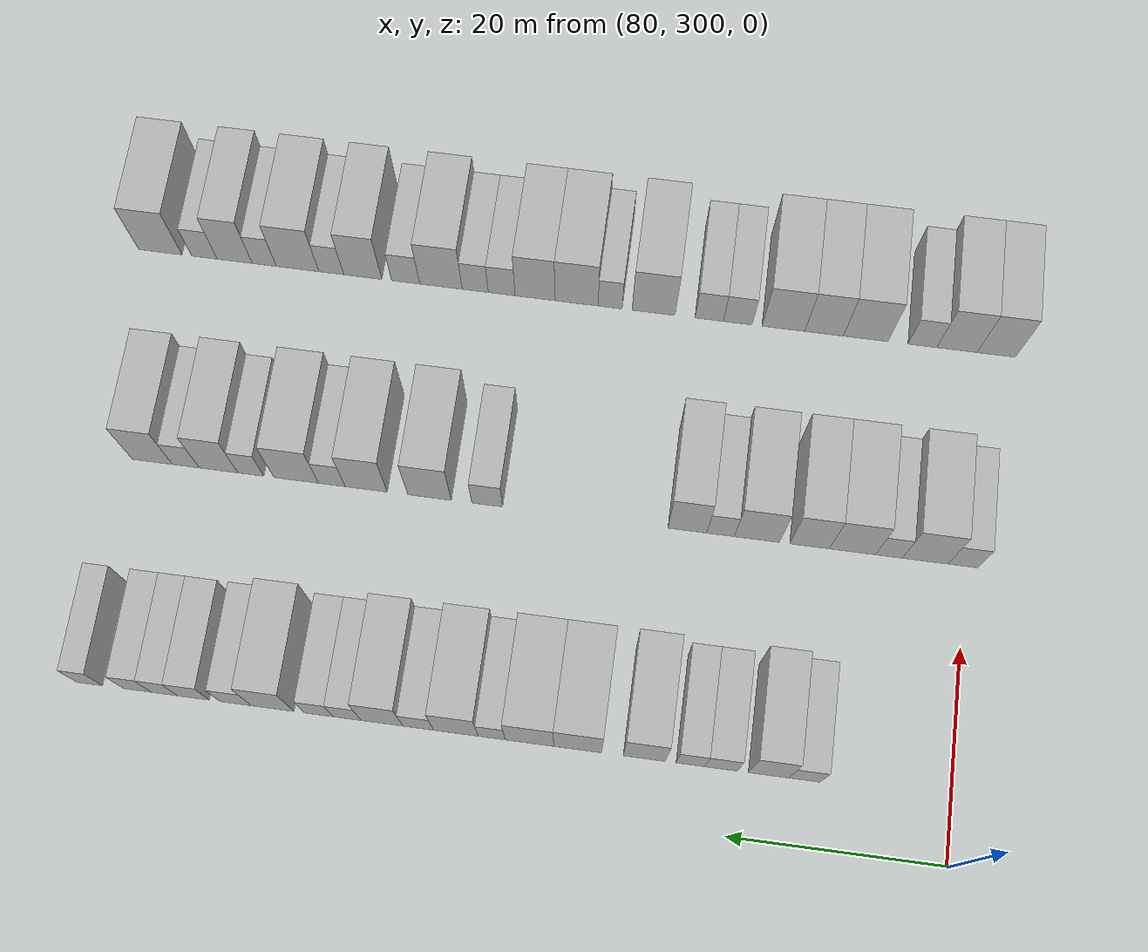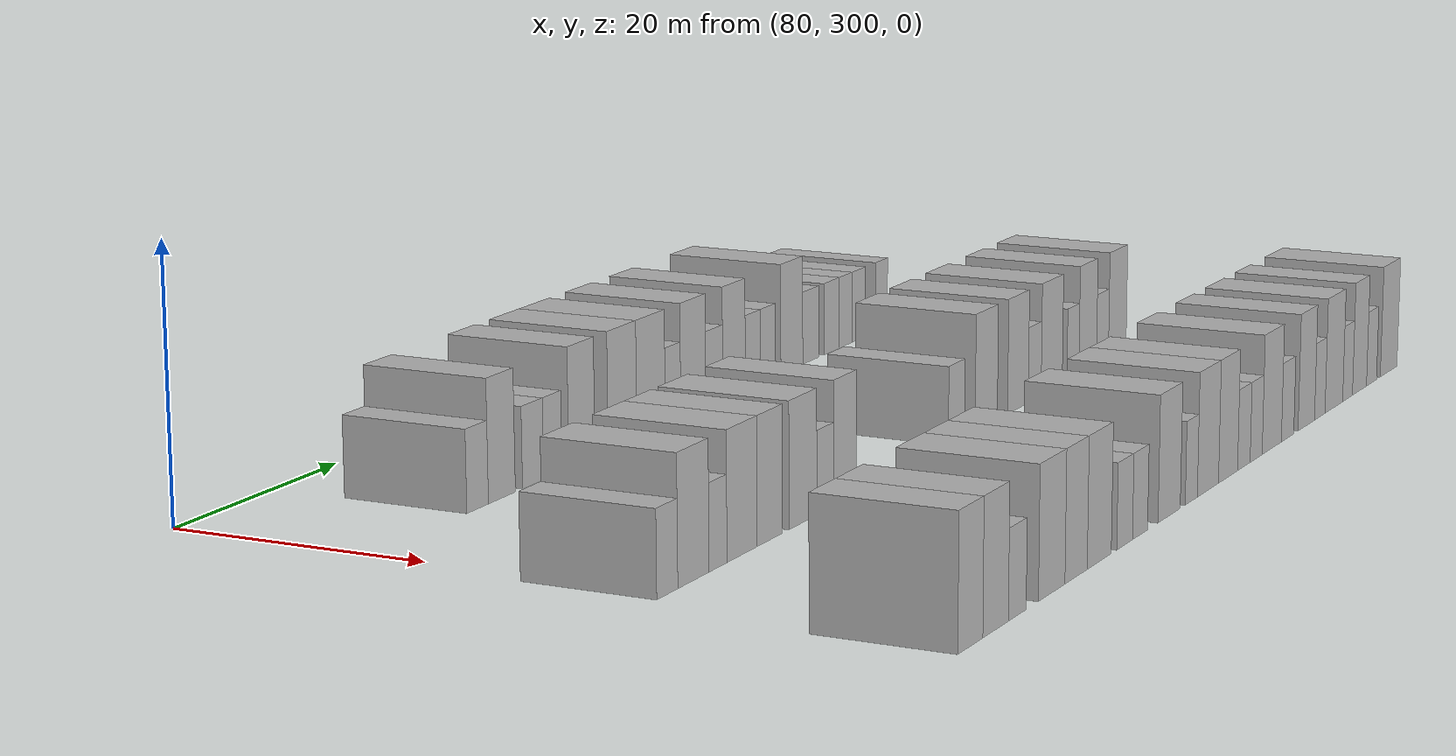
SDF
<sdf version="1.6">
 <world name="default">
  <model name="building_718">
   <static>1</static>
   <pose>91.0000 313.3676 0 0.000000 0.000000 0.000000</pose>
   <link name="link">
    <pose>0 0 3.00 0 0 0</pose>
    <collision name="collision"><geometry><box><size>10.0000 2.8907 6.0000</size></box></geometry></collision>
    <visual name="visual">
     <cast_shadows>0</cast_shadows>
     <geometry><box><size>10.0000 2.8907 6.0000</size></box></geometry>
     <material>
      <script>
       <uri>model://HANNAS_wall/materials/scripts</uri>
       <uri>model://HANNAS_wall/materials/textures</uri>
       <name>vrc/HANNAS_wall</name>
      </script>
     </material>
    </visual>
   </link>
  </model>
  <model name="building_719">
   <static>1</static>
   <pose>91.0000 316.6558 0 0.000000 0.000000 0.000000</pose>
   <link name="link">
    <pose>0 0 4.50 0 0 0</pose>
    <collision name="collision"><geometry><box><size>10.0000 3.6857 9.0000</size></box></geometry></collision>
    <visual name="visual">
     <cast_shadows>0</cast_shadows>
     <geometry><box><size>10.0000 3.6857 9.0000</size></box></geometry>
     <material>
      <script>
       <uri>model://HANNAS_wall/materials/scripts</uri>
       <uri>model://HANNAS_wall/materials/textures</uri>
       <name>vrc/HANNAS_wall</name>
      </script>
     </material>
    </visual>
   </link>
  </model>
  <model name="building_720">
   <static>1</static>
   <pose>91.0000 320.9948 0 0.000000 0.000000 0.000000</pose>
   <link name="link">
    <pose>0 0 3.00 0 0 0</pose>
    <collision name="collision"><geometry><box><size>10.0000 2.9923 6.0000</size></box></geometry></collision>
    <visual name="visual">
     <cast_shadows>0</cast_shadows>
     <geometry><box><size>10.0000 2.9923 6.0000</size></box></geometry>
     <material>
      <script>
       <uri>model://HANNAS_wall/materials/scripts</uri>
       <uri>model://HANNAS_wall/materials/textures</uri>
       <name>vrc/HANNAS_wall</name>
      </script>
     </material>
    </visual>
   </link>
  </model>
  <model name="building_721">
   <static>1</static>
   <pose>91.0000 323.8065 0 0.000000 0.000000 0.000000</pose>
   <link name="link">
    <pose>0 0 3.00 0 0 0</pose>
    <collision name="collision"><geometry><box><size>10.0000 2.6312 6.0000</size></box></geometry></collision>
    <visual name="visual">
     <cast_shadows>0</cast_shadows>
     <geometry><box><size>10.0000 2.6312 6.0000</size></box></geometry>
     <material>
      <script>
       <uri>model://HANNAS_wall/materials/scripts</uri>
       <uri>model://HANNAS_wall/materials/textures</uri>
       <name>vrc/HANNAS_wall</name>
      </script>
     </material>
    </visual>
   </link>
  </model>
  <model name="building_722">
   <static>1</static>
   <pose>91.0000 328.0548 0 0.000000 0.000000 0.000000</pose>
   <link name="link">
    <pose>0 0 4.50 0 0 0</pose>
    <collision name="collision"><geometry><box><size>10.0000 3.8654 9.0000</size></box></geometry></collision>
    <visual name="visual">
     <cast_shadows>0</cast_shadows>
     <geometry><box><size>10.0000 3.8654 9.0000</size></box></geometry>
     <material>
      <script>
       <uri>model://HANNAS_wall/materials/scripts</uri>
       <uri>model://HANNAS_wall/materials/textures</uri>
       <name>vrc/HANNAS_wall</name>
      </script>
     </material>
    </visual>
   </link>
  </model>
  <model name="building_723">
   <static>1</static>
   <pose>91.0000 334.1912 0 0.000000 0.000000 0.000000</pose>
   <link name="link">
    <pose>0 0 4.50 0 0 0</pose>
    <collision name="collision"><geometry><box><size>10.0000 4.4074 9.0000</size></box></geometry></collision>
    <visual name="visual">
     <cast_shadows>0</cast_shadows>
     <geometry><box><size>10.0000 4.4074 9.0000</size></box></geometry>
     <material>
      <script>
       <uri>model://HANNAS_wall/materials/scripts</uri>
       <uri>model://HANNAS_wall/materials/textures</uri>
       <name>vrc/HANNAS_wall</name>
      </script>
     </material>
    </visual>
   </link>
  </model>
  <model name="building_724">
   <static>1</static>
   <pose>91.0000 338.6426 0 0.000000 0.000000 0.000000</pose>
   <link name="link">
    <pose>0 0 4.50 0 0 0</pose>
    <collision name="collision"><geometry><box><size>10.0000 4.4955 9.0000</size></box></geometry></collision>
    <visual name="visual">
     <cast_shadows>0</cast_shadows>
     <geometry><box><size>10.0000 4.4955 9.0000</size></box></geometry>
     <material>
      <script>
       <uri>model://HANNAS_wall/materials/scripts</uri>
       <uri>model://HANNAS_wall/materials/textures</uri>
       <name>vrc/HANNAS_wall</name>
      </script>
     </material>
    </visual>
   </link>
  </model>
  <model name="building_725">
   <static>1</static>
   <pose>91.0000 342.1413 0 0.000000 0.000000 0.000000</pose>
   <link name="link">
    <pose>0 0 3.00 0 0 0</pose>
    <collision name="collision"><geometry><box><size>10.0000 2.5018 6.0000</size></box></geometry></collision>
    <visual name="visual">
     <cast_shadows>0</cast_shadows>
     <geometry><box><size>10.0000 2.5018 6.0000</size></box></geometry>
     <material>
      <script>
       <uri>model://HANNAS_wall/materials/scripts</uri>
       <uri>model://HANNAS_wall/materials/textures</uri>
       <name>vrc/HANNAS_wall</name>
      </script>
     </material>
    </visual>
   </link>
  </model>
  <model name="building_726">
   <static>1</static>
   <pose>91.0000 345.4576 0 0.000000 0.000000 0.000000</pose>
   <link name="link">
    <pose>0 0 4.50 0 0 0</pose>
    <collision name="collision"><geometry><box><size>10.0000 4.1308 9.0000</size></box></geometry></collision>
    <visual name="visual">
     <cast_shadows>0</cast_shadows>
     <geometry><box><size>10.0000 4.1308 9.0000</size></box></geometry>
     <material>
      <script>
       <uri>model://HANNAS_wall/materials/scripts</uri>
       <uri>model://HANNAS_wall/materials/textures</uri>
       <name>vrc/HANNAS_wall</name>
      </script>
     </material>
    </visual>
   </link>
  </model>
  <model name="building_727">
   <static>1</static>
   <pose>91.0000 348.9565 0 0.000000 0.000000 0.000000</pose>
   <link name="link">
    <pose>0 0 3.00 0 0 0</pose>
    <collision name="collision"><geometry><box><size>10.0000 2.8669 6.0000</size></box></geometry></collision>
    <visual name="visual">
     <cast_shadows>0</cast_shadows>
     <geometry><box><size>10.0000 2.8669 6.0000</size></box></geometry>
     <material>
      <script>
       <uri>model://HANNAS_wall/materials/scripts</uri>
       <uri>model://HANNAS_wall/materials/textures</uri>
       <name>vrc/HANNAS_wall</name>
      </script>
     </material>
    </visual>
   </link>
  </model>
  <model name="building_728">
   <static>1</static>
   <pose>91.0000 352.3343 0 0.000000 0.000000 0.000000</pose>
   <link name="link">
    <pose>0 0 4.50 0 0 0</pose>
    <collision name="collision"><geometry><box><size>10.0000 3.8886 9.0000</size></box></geometry></collision>
    <visual name="visual">
     <cast_shadows>0</cast_shadows>
     <geometry><box><size>10.0000 3.8886 9.0000</size></box></geometry>
     <material>
      <script>
       <uri>model://HANNAS_wall/materials/scripts</uri>
       <uri>model://HANNAS_wall/materials/textures</uri>
       <name>vrc/HANNAS_wall</name>
      </script>
     </material>
    </visual>
   </link>
  </model>
  <model name="building_729">
   <static>1</static>
   <pose>91.0000 355.5942 0 0.000000 0.000000 0.000000</pose>
   <link name="link">
    <pose>0 0 3.00 0 0 0</pose>
    <collision name="collision"><geometry><box><size>10.0000 2.6311 6.0000</size></box></geometry></collision>
    <visual name="visual">
     <cast_shadows>0</cast_shadows>
     <geometry><box><size>10.0000 2.6311 6.0000</size></box></geometry>
     <material>
      <script>
       <uri>model://HANNAS_wall/materials/scripts</uri>
       <uri>model://HANNAS_wall/materials/textures</uri>
       <name>vrc/HANNAS_wall</name>
      </script>
     </material>
    </visual>
   </link>
  </model>
  <model name="building_730">
   <static>1</static>
   <pose>91.0000 358.2446 0 0.000000 0.000000 0.000000</pose>
   <link name="link">
    <pose>0 0 3.00 0 0 0</pose>
    <collision name="collision"><geometry><box><size>10.0000 2.6698 6.0000</size></box></geometry></collision>
    <visual name="visual">
     <cast_shadows>0</cast_shadows>
     <geometry><box><size>10.0000 2.6698 6.0000</size></box></geometry>
     <material>
      <script>
       <uri>model://HANNAS_wall/materials/scripts</uri>
       <uri>model://HANNAS_wall/materials/textures</uri>
       <name>vrc/HANNAS_wall</name>
      </script>
     </material>
    </visual>
   </link>
  </model>
  <model name="building_731">
   <static>1</static>
   <pose>91.0000 362.5820 0 0.000000 0.000000 0.000000</pose>
   <link name="link">
    <pose>0 0 4.50 0 0 0</pose>
    <collision name="collision"><geometry><box><size>10.0000 4.0050 9.0000</size></box></geometry></collision>
    <visual name="visual">
     <cast_shadows>0</cast_shadows>
     <geometry><box><size>10.0000 4.0050 9.0000</size></box></geometry>
     <material>
      <script>
       <uri>model://HANNAS_wall/materials/scripts</uri>
       <uri>model://HANNAS_wall/materials/textures</uri>
       <name>vrc/HANNAS_wall</name>
      </script>
     </material>
    </visual>
   </link>
  </model>
  <model name="building_732">
   <static>1</static>
   <pose>91.0000 366.0600 0 0.000000 0.000000 0.000000</pose>
   <link name="link">
    <pose>0 0 3.00 0 0 0</pose>
    <collision name="collision"><geometry><box><size>10.0000 2.9511 6.0000</size></box></geometry></collision>
    <visual name="visual">
     <cast_shadows>0</cast_shadows>
     <geometry><box><size>10.0000 2.9511 6.0000</size></box></geometry>
     <material>
      <script>
       <uri>model://HANNAS_wall/materials/scripts</uri>
       <uri>model://HANNAS_wall/materials/textures</uri>
       <name>vrc/HANNAS_wall</name>
      </script>
     </material>
    </visual>
   </link>
  </model>
  <model name="building_733">
   <static>1</static>
   <pose>91.0000 370.0246 0 0.000000 0.000000 0.000000</pose>
   <link name="link">
    <pose>0 0 3.00 0 0 0</pose>
    <collision name="collision"><geometry><box><size>10.0000 2.9781 6.0000</size></box></geometry></collision>
    <visual name="visual">
     <cast_shadows>0</cast_shadows>
     <geometry><box><size>10.0000 2.9781 6.0000</size></box></geometry>
     <material>
      <script>
       <uri>model://HANNAS_wall/materials/scripts</uri>
       <uri>model://HANNAS_wall/materials/textures</uri>
       <name>vrc/HANNAS_wall</name>
      </script>
     </material>
    </visual>
   </link>
  </model>
  <model name="building_734">
   <static>1</static>
   <pose>91.0000 372.7498 0 0.000000 0.000000 0.000000</pose>
   <link name="link">
    <pose>0 0 3.00 0 0 0</pose>
    <collision name="collision"><geometry><box><size>10.0000 2.4721 6.0000</size></box></geometry></collision>
    <visual name="visual">
     <cast_shadows>0</cast_shadows>
     <geometry><box><size>10.0000 2.4721 6.0000</size></box></geometry>
     <material>
      <script>
       <uri>model://HANNAS_wall/materials/scripts</uri>
       <uri>model://HANNAS_wall/materials/textures</uri>
       <name>vrc/HANNAS_wall</name>
      </script>
     </material>
    </visual>
   </link>
  </model>
  <model name="building_735">
   <static>1</static>
   <pose>91.0000 375.2964 0 0.000000 0.000000 0.000000</pose>
   <link name="link">
    <pose>0 0 3.00 0 0 0</pose>
    <collision name="collision"><geometry><box><size>10.0000 2.6213 6.0000</size></box></geometry></collision>
    <visual name="visual">
     <cast_shadows>0</cast_shadows>
     <geometry><box><size>10.0000 2.6213 6.0000</size></box></geometry>
     <material>
      <script>
       <uri>model://HANNAS_wall/materials/scripts</uri>
       <uri>model://HANNAS_wall/materials/textures</uri>
       <name>vrc/HANNAS_wall</name>
      </script>
     </material>
    </visual>
   </link>
  </model>
  <model name="building_736">
   <static>1</static>
   <pose>91.0000 379.8107 0 0.000000 0.000000 0.000000</pose>
   <link name="link">
    <pose>0 0 3.00 0 0 0</pose>
    <collision name="collision"><geometry><box><size>10.0000 2.4073 6.0000</size></box></geometry></collision>
    <visual name="visual">
     <cast_shadows>0</cast_shadows>
     <geometry><box><size>10.0000 2.4073 6.0000</size></box></geometry>
     <material>
      <script>
       <uri>model://HANNAS_wall/materials/scripts</uri>
       <uri>model://HANNAS_wall/materials/textures</uri>
       <name>vrc/HANNAS_wall</name>
      </script>
     </material>
    </visual>
   </link>
  </model>
  <model name="building_913">
   <static>1</static>
   <pose>113.0000 300.2039 0 0.000000 0.000000 0.000000</pose>
   <link name="link">
    <pose>0 0 3.00 0 0 0</pose>
    <collision name="collision"><geometry><box><size>10.0000 2.8427 6.0000</size></box></geometry></collision>
    <visual name="visual">
     <cast_shadows>0</cast_shadows>
     <geometry><box><size>10.0000 2.8427 6.0000</size></box></geometry>
     <material>
      <script>
       <uri>model://HANNAS_wall/materials/scripts</uri>
       <uri>model://HANNAS_wall/materials/textures</uri>
       <name>vrc/HANNAS_wall</name>
      </script>
     </material>
    </visual>
   </link>
  </model>
  <model name="building_914">
   <static>1</static>
   <pose>113.0000 303.7923 0 0.000000 0.000000 0.000000</pose>
   <link name="link">
    <pose>0 0 4.50 0 0 0</pose>
    <collision name="collision"><geometry><box><size>10.0000 4.3341 9.0000</size></box></geometry></collision>
    <visual name="visual">
     <cast_shadows>0</cast_shadows>
     <geometry><box><size>10.0000 4.3341 9.0000</size></box></geometry>
     <material>
      <script>
       <uri>model://HANNAS_wall/materials/scripts</uri>
       <uri>model://HANNAS_wall/materials/textures</uri>
       <name>vrc/HANNAS_wall</name>
      </script>
     </material>
    </visual>
   </link>
  </model>
  <model name="building_915">
   <static>1</static>
   <pose>113.0000 307.2311 0 0.000000 0.000000 0.000000</pose>
   <link name="link">
    <pose>0 0 3.00 0 0 0</pose>
    <collision name="collision"><geometry><box><size>10.0000 2.5434 6.0000</size></box></geometry></collision>
    <visual name="visual">
     <cast_shadows>0</cast_shadows>
     <geometry><box><size>10.0000 2.5434 6.0000</size></box></geometry>
     <material>
      <script>
       <uri>model://HANNAS_wall/materials/scripts</uri>
       <uri>model://HANNAS_wall/materials/textures</uri>
       <name>vrc/HANNAS_wall</name>
      </script>
     </material>
    </visual>
   </link>
  </model>
  <model name="building_916">
   <static>1</static>
   <pose>113.0000 310.6995 0 0.000000 0.000000 0.000000</pose>
   <link name="link">
    <pose>0 0 4.50 0 0 0</pose>
    <collision name="collision"><geometry><box><size>10.0000 4.3933 9.0000</size></box></geometry></collision>
    <visual name="visual">
     <cast_shadows>0</cast_shadows>
     <geometry><box><size>10.0000 4.3933 9.0000</size></box></geometry>
     <material>
      <script>
       <uri>model://HANNAS_wall/materials/scripts</uri>
       <uri>model://HANNAS_wall/materials/textures</uri>
       <name>vrc/HANNAS_wall</name>
      </script>
     </material>
    </visual>
   </link>
  </model>
  <model name="building_917">
   <static>1</static>
   <pose>113.0000 314.7960 0 0.000000 0.000000 0.000000</pose>
   <link name="link">
    <pose>0 0 4.50 0 0 0</pose>
    <collision name="collision"><geometry><box><size>10.0000 3.7998 9.0000</size></box></geometry></collision>
    <visual name="visual">
     <cast_shadows>0</cast_shadows>
     <geometry><box><size>10.0000 3.7998 9.0000</size></box></geometry>
     <material>
      <script>
       <uri>model://HANNAS_wall/materials/scripts</uri>
       <uri>model://HANNAS_wall/materials/textures</uri>
       <name>vrc/HANNAS_wall</name>
      </script>
     </material>
    </visual>
   </link>
  </model>
  <model name="building_918">
   <static>1</static>
   <pose>113.0000 319.8504 0 0.000000 0.000000 0.000000</pose>
   <link name="link">
    <pose>0 0 4.50 0 0 0</pose>
    <collision name="collision"><geometry><box><size>10.0000 4.3091 9.0000</size></box></geometry></collision>
    <visual name="visual">
     <cast_shadows>0</cast_shadows>
     <geometry><box><size>10.0000 4.3091 9.0000</size></box></geometry>
     <material>
      <script>
       <uri>model://HANNAS_wall/materials/scripts</uri>
       <uri>model://HANNAS_wall/materials/textures</uri>
       <name>vrc/HANNAS_wall</name>
      </script>
     </material>
    </visual>
   </link>
  </model>
  <model name="building_919">
   <static>1</static>
   <pose>113.0000 323.3292 0 0.000000 0.000000 0.000000</pose>
   <link name="link">
    <pose>0 0 3.00 0 0 0</pose>
    <collision name="collision"><geometry><box><size>10.0000 2.6484 6.0000</size></box></geometry></collision>
    <visual name="visual">
     <cast_shadows>0</cast_shadows>
     <geometry><box><size>10.0000 2.6484 6.0000</size></box></geometry>
     <material>
      <script>
       <uri>model://HANNAS_wall/materials/scripts</uri>
       <uri>model://HANNAS_wall/materials/textures</uri>
       <name>vrc/HANNAS_wall</name>
      </script>
     </material>
    </visual>
   </link>
  </model>
  <model name="building_920">
   <static>1</static>
   <pose>113.0000 326.5164 0 0.000000 0.000000 0.000000</pose>
   <link name="link">
    <pose>0 0 4.50 0 0 0</pose>
    <collision name="collision"><geometry><box><size>10.0000 3.7261 9.0000</size></box></geometry></collision>
    <visual name="visual">
     <cast_shadows>0</cast_shadows>
     <geometry><box><size>10.0000 3.7261 9.0000</size></box></geometry>
     <material>
      <script>
       <uri>model://HANNAS_wall/materials/scripts</uri>
       <uri>model://HANNAS_wall/materials/textures</uri>
       <name>vrc/HANNAS_wall</name>
      </script>
     </material>
    </visual>
   </link>
  </model>
  <model name="building_921">
   <static>1</static>
   <pose>113.0000 345.8560 0 0.000000 0.000000 0.000000</pose>
   <link name="link">
    <pose>0 0 3.00 0 0 0</pose>
    <collision name="collision"><geometry><box><size>10.0000 2.9843 6.0000</size></box></geometry></collision>
    <visual name="visual">
     <cast_shadows>0</cast_shadows>
     <geometry><box><size>10.0000 2.9843 6.0000</size></box></geometry>
     <material>
      <script>
       <uri>model://HANNAS_wall/materials/scripts</uri>
       <uri>model://HANNAS_wall/materials/textures</uri>
       <name>vrc/HANNAS_wall</name>
      </script>
     </material>
    </visual>
   </link>
  </model>
  <model name="building_922">
   <static>1</static>
   <pose>113.0000 351.4665 0 0.000000 0.000000 0.000000</pose>
   <link name="link">
    <pose>0 0 4.50 0 0 0</pose>
    <collision name="collision"><geometry><box><size>10.0000 4.2368 9.0000</size></box></geometry></collision>
    <visual name="visual">
     <cast_shadows>0</cast_shadows>
     <geometry><box><size>10.0000 4.2368 9.0000</size></box></geometry>
     <material>
      <script>
       <uri>model://HANNAS_wall/materials/scripts</uri>
       <uri>model://HANNAS_wall/materials/textures</uri>
       <name>vrc/HANNAS_wall</name>
      </script>
     </material>
    </visual>
   </link>
  </model>
  <model name="building_923">
   <static>1</static>
   <pose>113.0000 357.6418 0 0.000000 0.000000 0.000000</pose>
   <link name="link">
    <pose>0 0 4.50 0 0 0</pose>
    <collision name="collision"><geometry><box><size>10.0000 4.1137 9.0000</size></box></geometry></collision>
    <visual name="visual">
     <cast_shadows>0</cast_shadows>
     <geometry><box><size>10.0000 4.1137 9.0000</size></box></geometry>
     <material>
      <script>
       <uri>model://HANNAS_wall/materials/scripts</uri>
       <uri>model://HANNAS_wall/materials/textures</uri>
       <name>vrc/HANNAS_wall</name>
      </script>
     </material>
    </visual>
   </link>
  </model>
  <model name="building_924">
   <static>1</static>
   <pose>113.0000 361.0004 0 0.000000 0.000000 0.000000</pose>
   <link name="link">
    <pose>0 0 3.00 0 0 0</pose>
    <collision name="collision"><geometry><box><size>10.0000 2.6034 6.0000</size></box></geometry></collision>
    <visual name="visual">
     <cast_shadows>0</cast_shadows>
     <geometry><box><size>10.0000 2.6034 6.0000</size></box></geometry>
     <material>
      <script>
       <uri>model://HANNAS_wall/materials/scripts</uri>
       <uri>model://HANNAS_wall/materials/textures</uri>
       <name>vrc/HANNAS_wall</name>
      </script>
     </material>
    </visual>
   </link>
  </model>
  <model name="building_925">
   <static>1</static>
   <pose>113.0000 364.4902 0 0.000000 0.000000 0.000000</pose>
   <link name="link">
    <pose>0 0 4.50 0 0 0</pose>
    <collision name="collision"><geometry><box><size>10.0000 4.3763 9.0000</size></box></geometry></collision>
    <visual name="visual">
     <cast_shadows>0</cast_shadows>
     <geometry><box><size>10.0000 4.3763 9.0000</size></box></geometry>
     <material>
      <script>
       <uri>model://HANNAS_wall/materials/scripts</uri>
       <uri>model://HANNAS_wall/materials/textures</uri>
       <name>vrc/HANNAS_wall</name>
      </script>
     </material>
    </visual>
   </link>
  </model>
  <model name="building_926">
   <static>1</static>
   <pose>113.0000 368.9442 0 0.000000 0.000000 0.000000</pose>
   <link name="link">
    <pose>0 0 3.00 0 0 0</pose>
    <collision name="collision"><geometry><box><size>10.0000 2.5316 6.0000</size></box></geometry></collision>
    <visual name="visual">
     <cast_shadows>0</cast_shadows>
     <geometry><box><size>10.0000 2.5316 6.0000</size></box></geometry>
     <material>
      <script>
       <uri>model://HANNAS_wall/materials/scripts</uri>
       <uri>model://HANNAS_wall/materials/textures</uri>
       <name>vrc/HANNAS_wall</name>
      </script>
     </material>
    </visual>
   </link>
  </model>
  <model name="building_927">
   <static>1</static>
   <pose>113.0000 372.1155 0 0.000000 0.000000 0.000000</pose>
   <link name="link">
    <pose>0 0 4.50 0 0 0</pose>
    <collision name="collision"><geometry><box><size>10.0000 3.8110 9.0000</size></box></geometry></collision>
    <visual name="visual">
     <cast_shadows>0</cast_shadows>
     <geometry><box><size>10.0000 3.8110 9.0000</size></box></geometry>
     <material>
      <script>
       <uri>model://HANNAS_wall/materials/scripts</uri>
       <uri>model://HANNAS_wall/materials/textures</uri>
       <name>vrc/HANNAS_wall</name>
      </script>
     </material>
    </visual>
   </link>
  </model>
  <model name="building_928">
   <static>1</static>
   <pose>113.0000 375.3457 0 0.000000 0.000000 0.000000</pose>
   <link name="link">
    <pose>0 0 3.00 0 0 0</pose>
    <collision name="collision"><geometry><box><size>10.0000 2.6495 6.0000</size></box></geometry></collision>
    <visual name="visual">
     <cast_shadows>0</cast_shadows>
     <geometry><box><size>10.0000 2.6495 6.0000</size></box></geometry>
     <material>
      <script>
       <uri>model://HANNAS_wall/materials/scripts</uri>
       <uri>model://HANNAS_wall/materials/textures</uri>
       <name>vrc/HANNAS_wall</name>
      </script>
     </material>
    </visual>
   </link>
  </model>
  <model name="building_929">
   <static>1</static>
   <pose>113.0000 378.6532 0 0.000000 0.000000 0.000000</pose>
   <link name="link">
    <pose>0 0 4.50 0 0 0</pose>
    <collision name="collision"><geometry><box><size>10.0000 3.9656 9.0000</size></box></geometry></collision>
    <visual name="visual">
     <cast_shadows>0</cast_shadows>
     <geometry><box><size>10.0000 3.9656 9.0000</size></box></geometry>
     <material>
      <script>
       <uri>model://HANNAS_wall/materials/scripts</uri>
       <uri>model://HANNAS_wall/materials/textures</uri>
       <name>vrc/HANNAS_wall</name>
      </script>
     </material>
    </visual>
   </link>
  </model>
  <model name="building_1097">
   <static>1</static>
   <pose>135.0000 298.1456 0 0.000000 0.000000 0.000000</pose>
   <link name="link">
    <pose>0 0 4.50 0 0 0</pose>
    <collision name="collision"><geometry><box><size>10.0000 3.7905 9.0000</size></box></geometry></collision>
    <visual name="visual">
     <cast_shadows>0</cast_shadows>
     <geometry><box><size>10.0000 3.7905 9.0000</size></box></geometry>
     <material>
      <script>
       <uri>model://HANNAS_wall/materials/scripts</uri>
       <uri>model://HANNAS_wall/materials/textures</uri>
       <name>vrc/HANNAS_wall</name>
      </script>
     </material>
    </visual>
   </link>
  </model>
  <model name="building_1098">
   <static>1</static>
   <pose>135.0000 302.0367 0 0.000000 0.000000 0.000000</pose>
   <link name="link">
    <pose>0 0 4.50 0 0 0</pose>
    <collision name="collision"><geometry><box><size>10.0000 3.9917 9.0000</size></box></geometry></collision>
    <visual name="visual">
     <cast_shadows>0</cast_shadows>
     <geometry><box><size>10.0000 3.9917 9.0000</size></box></geometry>
     <material>
      <script>
       <uri>model://HANNAS_wall/materials/scripts</uri>
       <uri>model://HANNAS_wall/materials/textures</uri>
       <name>vrc/HANNAS_wall</name>
      </script>
     </material>
    </visual>
   </link>
  </model>
  <model name="building_1099">
   <static>1</static>
   <pose>135.0000 305.4622 0 0.000000 0.000000 0.000000</pose>
   <link name="link">
    <pose>0 0 3.00 0 0 0</pose>
    <collision name="collision"><geometry><box><size>10.0000 2.8593 6.0000</size></box></geometry></collision>
    <visual name="visual">
     <cast_shadows>0</cast_shadows>
     <geometry><box><size>10.0000 2.8593 6.0000</size></box></geometry>
     <material>
      <script>
       <uri>model://HANNAS_wall/materials/scripts</uri>
       <uri>model://HANNAS_wall/materials/textures</uri>
       <name>vrc/HANNAS_wall</name>
      </script>
     </material>
    </visual>
   </link>
  </model>
  <model name="building_1100">
   <static>1</static>
   <pose>135.0000 311.1109 0 0.000000 0.000000 0.000000</pose>
   <link name="link">
    <pose>0 0 4.50 0 0 0</pose>
    <collision name="collision"><geometry><box><size>10.0000 4.4380 9.0000</size></box></geometry></collision>
    <visual name="visual">
     <cast_shadows>0</cast_shadows>
     <geometry><box><size>10.0000 4.4380 9.0000</size></box></geometry>
     <material>
      <script>
       <uri>model://HANNAS_wall/materials/scripts</uri>
       <uri>model://HANNAS_wall/materials/textures</uri>
       <name>vrc/HANNAS_wall</name>
      </script>
     </material>
    </visual>
   </link>
  </model>
  <model name="building_1101">
   <static>1</static>
   <pose>135.0000 315.2544 0 0.000000 0.000000 0.000000</pose>
   <link name="link">
    <pose>0 0 4.50 0 0 0</pose>
    <collision name="collision"><geometry><box><size>10.0000 3.8490 9.0000</size></box></geometry></collision>
    <visual name="visual">
     <cast_shadows>0</cast_shadows>
     <geometry><box><size>10.0000 3.8490 9.0000</size></box></geometry>
     <material>
      <script>
       <uri>model://HANNAS_wall/materials/scripts</uri>
       <uri>model://HANNAS_wall/materials/textures</uri>
       <name>vrc/HANNAS_wall</name>
      </script>
     </material>
    </visual>
   </link>
  </model>
  <model name="building_1102">
   <static>1</static>
   <pose>135.0000 319.3148 0 0.000000 0.000000 0.000000</pose>
   <link name="link">
    <pose>0 0 4.50 0 0 0</pose>
    <collision name="collision"><geometry><box><size>10.0000 4.2720 9.0000</size></box></geometry></collision>
    <visual name="visual">
     <cast_shadows>0</cast_shadows>
     <geometry><box><size>10.0000 4.2720 9.0000</size></box></geometry>
     <material>
      <script>
       <uri>model://HANNAS_wall/materials/scripts</uri>
       <uri>model://HANNAS_wall/materials/textures</uri>
       <name>vrc/HANNAS_wall</name>
      </script>
     </material>
    </visual>
   </link>
  </model>
  <model name="building_1103">
   <static>1</static>
   <pose>135.0000 323.8943 0 0.000000 0.000000 0.000000</pose>
   <link name="link">
    <pose>0 0 3.00 0 0 0</pose>
    <collision name="collision"><geometry><box><size>10.0000 2.8870 6.0000</size></box></geometry></collision>
    <visual name="visual">
     <cast_shadows>0</cast_shadows>
     <geometry><box><size>10.0000 2.8870 6.0000</size></box></geometry>
     <material>
      <script>
       <uri>model://HANNAS_wall/materials/scripts</uri>
       <uri>model://HANNAS_wall/materials/textures</uri>
       <name>vrc/HANNAS_wall</name>
      </script>
     </material>
    </visual>
   </link>
  </model>
  <model name="building_1104">
   <static>1</static>
   <pose>135.0000 326.7544 0 0.000000 0.000000 0.000000</pose>
   <link name="link">
    <pose>0 0 3.00 0 0 0</pose>
    <collision name="collision"><geometry><box><size>10.0000 2.8332 6.0000</size></box></geometry></collision>
    <visual name="visual">
     <cast_shadows>0</cast_shadows>
     <geometry><box><size>10.0000 2.8332 6.0000</size></box></geometry>
     <material>
      <script>
       <uri>model://HANNAS_wall/materials/scripts</uri>
       <uri>model://HANNAS_wall/materials/textures</uri>
       <name>vrc/HANNAS_wall</name>
      </script>
     </material>
    </visual>
   </link>
  </model>
  <model name="building_1105">
   <static>1</static>
   <pose>135.0000 332.3361 0 0.000000 0.000000 0.000000</pose>
   <link name="link">
    <pose>0 0 4.50 0 0 0</pose>
    <collision name="collision"><geometry><box><size>10.0000 4.3303 9.0000</size></box></geometry></collision>
    <visual name="visual">
     <cast_shadows>0</cast_shadows>
     <geometry><box><size>10.0000 4.3303 9.0000</size></box></geometry>
     <material>
      <script>
       <uri>model://HANNAS_wall/materials/scripts</uri>
       <uri>model://HANNAS_wall/materials/textures</uri>
       <name>vrc/HANNAS_wall</name>
      </script>
     </material>
    </visual>
   </link>
  </model>
  <model name="building_1106">
   <static>1</static>
   <pose>135.0000 336.7144 0 0.000000 0.000000 0.000000</pose>
   <link name="link">
    <pose>0 0 3.00 0 0 0</pose>
    <collision name="collision"><geometry><box><size>10.0000 2.4262 6.0000</size></box></geometry></collision>
    <visual name="visual">
     <cast_shadows>0</cast_shadows>
     <geometry><box><size>10.0000 2.4262 6.0000</size></box></geometry>
     <material>
      <script>
       <uri>model://HANNAS_wall/materials/scripts</uri>
       <uri>model://HANNAS_wall/materials/textures</uri>
       <name>vrc/HANNAS_wall</name>
      </script>
     </material>
    </visual>
   </link>
  </model>
  <model name="building_1107">
   <static>1</static>
   <pose>135.0000 340.1068 0 0.000000 0.000000 0.000000</pose>
   <link name="link">
    <pose>0 0 4.50 0 0 0</pose>
    <collision name="collision"><geometry><box><size>10.0000 4.3587 9.0000</size></box></geometry></collision>
    <visual name="visual">
     <cast_shadows>0</cast_shadows>
     <geometry><box><size>10.0000 4.3587 9.0000</size></box></geometry>
     <material>
      <script>
       <uri>model://HANNAS_wall/materials/scripts</uri>
       <uri>model://HANNAS_wall/materials/textures</uri>
       <name>vrc/HANNAS_wall</name>
      </script>
     </material>
    </visual>
   </link>
  </model>
  <model name="building_1108">
   <static>1</static>
   <pose>135.0000 344.3009 0 0.000000 0.000000 0.000000</pose>
   <link name="link">
    <pose>0 0 4.50 0 0 0</pose>
    <collision name="collision"><geometry><box><size>10.0000 4.0294 9.0000</size></box></geometry></collision>
    <visual name="visual">
     <cast_shadows>0</cast_shadows>
     <geometry><box><size>10.0000 4.0294 9.0000</size></box></geometry>
     <material>
      <script>
       <uri>model://HANNAS_wall/materials/scripts</uri>
       <uri>model://HANNAS_wall/materials/textures</uri>
       <name>vrc/HANNAS_wall</name>
      </script>
     </material>
    </visual>
   </link>
  </model>
  <model name="building_1109">
   <static>1</static>
   <pose>135.0000 347.6754 0 0.000000 0.000000 0.000000</pose>
   <link name="link">
    <pose>0 0 3.00 0 0 0</pose>
    <collision name="collision"><geometry><box><size>10.0000 2.7197 6.0000</size></box></geometry></collision>
    <visual name="visual">
     <cast_shadows>0</cast_shadows>
     <geometry><box><size>10.0000 2.7197 6.0000</size></box></geometry>
     <material>
      <script>
       <uri>model://HANNAS_wall/materials/scripts</uri>
       <uri>model://HANNAS_wall/materials/textures</uri>
       <name>vrc/HANNAS_wall</name>
      </script>
     </material>
    </visual>
   </link>
  </model>
  <model name="building_1110">
   <static>1</static>
   <pose>135.0000 350.3616 0 0.000000 0.000000 0.000000</pose>
   <link name="link">
    <pose>0 0 3.00 0 0 0</pose>
    <collision name="collision"><geometry><box><size>10.0000 2.6528 6.0000</size></box></geometry></collision>
    <visual name="visual">
     <cast_shadows>0</cast_shadows>
     <geometry><box><size>10.0000 2.6528 6.0000</size></box></geometry>
     <material>
      <script>
       <uri>model://HANNAS_wall/materials/scripts</uri>
       <uri>model://HANNAS_wall/materials/textures</uri>
       <name>vrc/HANNAS_wall</name>
      </script>
     </material>
    </visual>
   </link>
  </model>
  <model name="building_1111">
   <static>1</static>
   <pose>135.0000 353.8483 0 0.000000 0.000000 0.000000</pose>
   <link name="link">
    <pose>0 0 4.50 0 0 0</pose>
    <collision name="collision"><geometry><box><size>10.0000 4.3205 9.0000</size></box></geometry></collision>
    <visual name="visual">
     <cast_shadows>0</cast_shadows>
     <geometry><box><size>10.0000 4.3205 9.0000</size></box></geometry>
     <material>
      <script>
       <uri>model://HANNAS_wall/materials/scripts</uri>
       <uri>model://HANNAS_wall/materials/textures</uri>
       <name>vrc/HANNAS_wall</name>
      </script>
     </material>
    </visual>
   </link>
  </model>
  <model name="building_1112">
   <static>1</static>
   <pose>135.0000 357.4393 0 0.000000 0.000000 0.000000</pose>
   <link name="link">
    <pose>0 0 3.00 0 0 0</pose>
    <collision name="collision"><geometry><box><size>10.0000 2.8617 6.0000</size></box></geometry></collision>
    <visual name="visual">
     <cast_shadows>0</cast_shadows>
     <geometry><box><size>10.0000 2.8617 6.0000</size></box></geometry>
     <material>
      <script>
       <uri>model://HANNAS_wall/materials/scripts</uri>
       <uri>model://HANNAS_wall/materials/textures</uri>
       <name>vrc/HANNAS_wall</name>
      </script>
     </material>
    </visual>
   </link>
  </model>
  <model name="building_1113">
   <static>1</static>
   <pose>135.0000 361.8169 0 0.000000 0.000000 0.000000</pose>
   <link name="link">
    <pose>0 0 4.50 0 0 0</pose>
    <collision name="collision"><geometry><box><size>10.0000 3.8933 9.0000</size></box></geometry></collision>
    <visual name="visual">
     <cast_shadows>0</cast_shadows>
     <geometry><box><size>10.0000 3.8933 9.0000</size></box></geometry>
     <material>
      <script>
       <uri>model://HANNAS_wall/materials/scripts</uri>
       <uri>model://HANNAS_wall/materials/textures</uri>
       <name>vrc/HANNAS_wall</name>
      </script>
     </material>
    </visual>
   </link>
  </model>
  <model name="building_1114">
   <static>1</static>
   <pose>135.0000 365.0356 0 0.000000 0.000000 0.000000</pose>
   <link name="link">
    <pose>0 0 3.00 0 0 0</pose>
    <collision name="collision"><geometry><box><size>10.0000 2.5441 6.0000</size></box></geometry></collision>
    <visual name="visual">
     <cast_shadows>0</cast_shadows>
     <geometry><box><size>10.0000 2.5441 6.0000</size></box></geometry>
     <material>
      <script>
       <uri>model://HANNAS_wall/materials/scripts</uri>
       <uri>model://HANNAS_wall/materials/textures</uri>
       <name>vrc/HANNAS_wall</name>
      </script>
     </material>
    </visual>
   </link>
  </model>
  <model name="building_1115">
   <static>1</static>
   <pose>135.0000 368.4868 0 0.000000 0.000000 0.000000</pose>
   <link name="link">
    <pose>0 0 4.50 0 0 0</pose>
    <collision name="collision"><geometry><box><size>10.0000 4.3584 9.0000</size></box></geometry></collision>
    <visual name="visual">
     <cast_shadows>0</cast_shadows>
     <geometry><box><size>10.0000 4.3584 9.0000</size></box></geometry>
     <material>
      <script>
       <uri>model://HANNAS_wall/materials/scripts</uri>
       <uri>model://HANNAS_wall/materials/textures</uri>
       <name>vrc/HANNAS_wall</name>
      </script>
     </material>
    </visual>
   </link>
  </model>
  <model name="building_1116">
   <static>1</static>
   <pose>135.0000 371.9029 0 0.000000 0.000000 0.000000</pose>
   <link name="link">
    <pose>0 0 3.00 0 0 0</pose>
    <collision name="collision"><geometry><box><size>10.0000 2.4736 6.0000</size></box></geometry></collision>
    <visual name="visual">
     <cast_shadows>0</cast_shadows>
     <geometry><box><size>10.0000 2.4736 6.0000</size></box></geometry>
     <material>
      <script>
       <uri>model://HANNAS_wall/materials/scripts</uri>
       <uri>model://HANNAS_wall/materials/textures</uri>
       <name>vrc/HANNAS_wall</name>
      </script>
     </material>
    </visual>
   </link>
  </model>
  <model name="building_1117">
   <static>1</static>
   <pose>135.0000 374.9456 0 0.000000 0.000000 0.000000</pose>
   <link name="link">
    <pose>0 0 4.50 0 0 0</pose>
    <collision name="collision"><geometry><box><size>10.0000 3.6118 9.0000</size></box></geometry></collision>
    <visual name="visual">
     <cast_shadows>0</cast_shadows>
     <geometry><box><size>10.0000 3.6118 9.0000</size></box></geometry>
     <material>
      <script>
       <uri>model://HANNAS_wall/materials/scripts</uri>
       <uri>model://HANNAS_wall/materials/textures</uri>
       <name>vrc/HANNAS_wall</name>
      </script>
     </material>
    </visual>
   </link>
  </model>
  <model name="building_1118">
   <static>1</static>
   <pose>135.0000 378.0613 0 0.000000 0.000000 0.000000</pose>
   <link name="link">
    <pose>0 0 3.00 0 0 0</pose>
    <collision name="collision"><geometry><box><size>10.0000 2.6197 6.0000</size></box></geometry></collision>
    <visual name="visual">
     <cast_shadows>0</cast_shadows>
     <geometry><box><size>10.0000 2.6197 6.0000</size></box></geometry>
     <material>
      <script>
       <uri>model://HANNAS_wall/materials/scripts</uri>
       <uri>model://HANNAS_wall/materials/textures</uri>
       <name>vrc/HANNAS_wall</name>
      </script>
     </material>
    </visual>
   </link>
  </model>
  <model name="building_1119">
   <static>1</static>
   <pose>135.0000 382.6055 0 0.000000 0.000000 0.000000</pose>
   <link name="link">
    <pose>0 0 4.50 0 0 0</pose>
    <collision name="collision"><geometry><box><size>10.0000 4.4687 9.0000</size></box></geometry></collision>
    <visual name="visual">
     <cast_shadows>0</cast_shadows>
     <geometry><box><size>10.0000 4.4687 9.0000</size></box></geometry>
     <material>
      <script>
       <uri>model://HANNAS_wall/materials/scripts</uri>
       <uri>model://HANNAS_wall/materials/textures</uri>
       <name>vrc/HANNAS_wall</name>
      </script>
     </material>
    </visual>
   </link>
  </model>
 </world>
</sdf>
